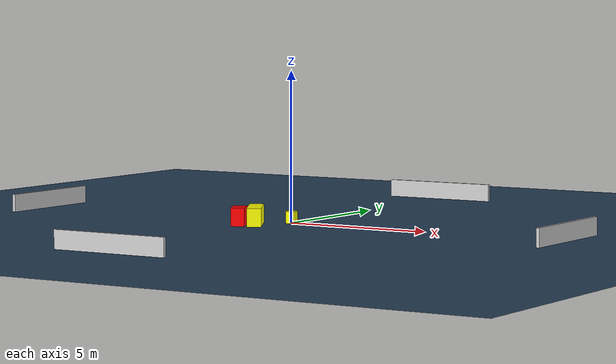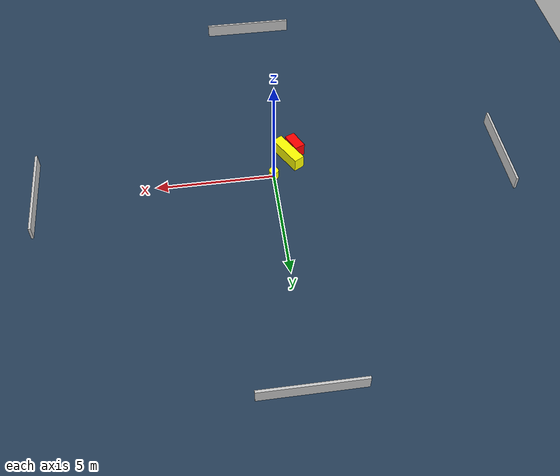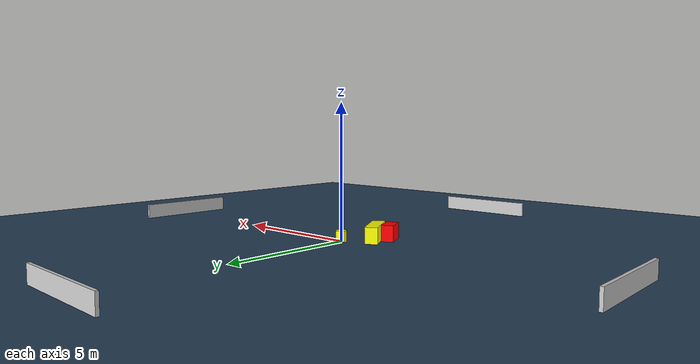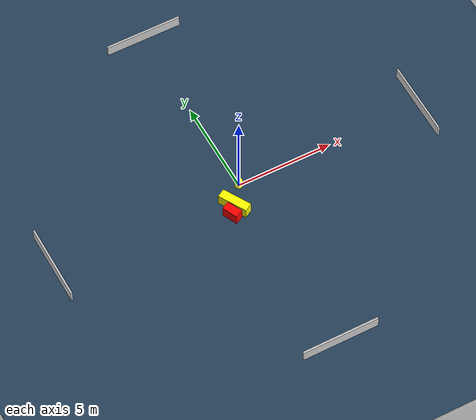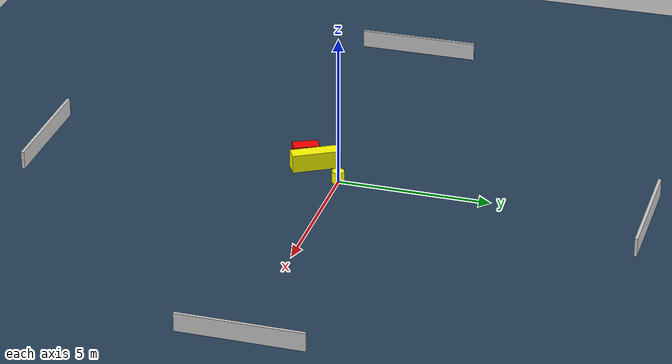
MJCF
<?xml version="1.0" ?>
<mujoco model="generated_environment">
  <option timestep="0.01" integrator="RK4" cone="elliptic"/>
  <default>
    <geom density="1"/>
  </default>
  <asset>
    <texture builtin="gradient" height="3072" name="skybox" rgb1="0.3 0.5 0.7" rgb2="0 0 0" type="skybox" width="512"/>
    <texture builtin="checker" height="300" name="groundplane" rgb1="0.2 0.3 0.4" rgb2="0.1 0.2 0.3" type="2d" width="300"/>
    <material name="groundplane" reflectance="0.2" texrepeat="5 5" texture="groundplane"/>
  </asset>
  <worldbody>
    <light dir="0 0 -1" directional="true" pos="0 0 1.5"/>
    <geom condim="3" friction="0.5 0.005 0.001" material="groundplane" name="floor" pos="0 0 0" size="0 0 0.05" type="plane"/>
    <body name="walls">
      <geom name="wall_1" condim="4" pos="-10.0 0.0 0.3" rgba="0.800000011920929 0.800000011920929 0.800000011920929 1.0" size="0.05 2.0 0.3" type="box"/>
      <geom name="wall_2" condim="4" pos="10.0 0.0 0.3" rgba="0.800000011920929 0.800000011920929 0.800000011920929 1.0" size="0.05 2.0 0.3" type="box"/>
      <geom name="wall_3" condim="4" pos="0.0 -10.0 0.3" rgba="0.800000011920929 0.800000011920929 0.800000011920929 1.0" size="2.0 0.05 0.3" type="box"/>
      <geom name="wall_4" condim="4" pos="0.0 10.0 0.3" rgba="0.800000011920929 0.800000011920929 0.800000011920929 1.0" size="2.0 0.05 0.3" type="box"/>
    </body>
    <body name="robot">
      <joint name="joint_x" type="slide" pos="0 0 0" axis="1 0 0"/>
      <joint name="joint_y" type="slide" pos="0 0 0" axis="0 1 0"/>
      <geom name="robot" type="cylinder" pos="0.0 0.0 0.2" size="0.2 0.2 0.0" mass="5.0" friction="1.0 0.005 0.0001" condim="4" rgba="1.0 1.0 0.0 1.0"/>
    </body>
    <body name="obstacle_1_movable">
      <geom name="obstacle_1_movable" condim="4" pos="-0.7602491618531161 -1.0012639695687142 0.3" euler="0 0 299.5482164745957" friction="0.0 0.005 0.001" rgba="1.0 1.0 0.0 1.0" size="0.7847282460167757 0.23583336894406298 0.3" type="box" mass="0.1"/>
      <joint type="free"/>
    </body>
    <body name="obstacle_2_static">
      <geom name="obstacle_2_static" condim="4" pos="-1.112328115844123 -1.424009798345042 0.3" euler="0 0 295.37193099106184" friction="0.0 0.005 0.001" rgba="1.0 0.0 0.0 1.0" size="0.4213433400392392 0.22647716284242247 0.3" type="box"/>
    </body>
  </worldbody>
  <actuator>
    <motor name="actuator_x" joint="joint_x" gear="1" ctrlrange="-1 1"/>
    <motor name="actuator_y" joint="joint_y" gear="1" ctrlrange="-1 1"/>
  </actuator>
</mujoco>
